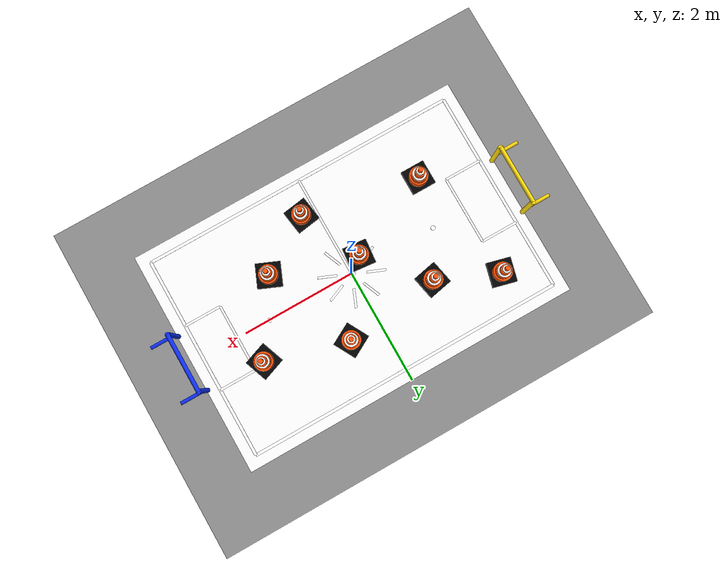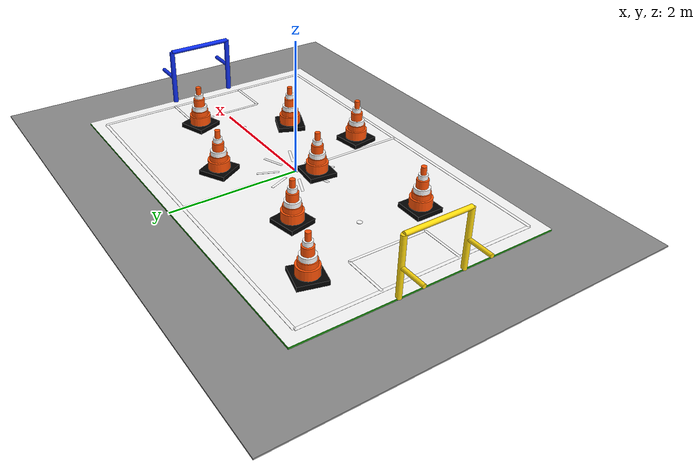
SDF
<?xml version="1.0"?>
<sdf version="1.6">
  <world name="assignment3_new_world">
    <plugin filename="gz-sim-physics-system" name="gz::sim::systems::Physics"/>
    <plugin filename="gz-sim-user-commands-system" name="gz::sim::systems::UserCommands"/>
    <plugin filename="gz-sim-scene-broadcaster-system" name="gz::sim::systems::SceneBroadcaster"/>
    <plugin filename="gz-sim-sensors-system" name="gz::sim::systems::Sensors">
      <render_engine>ogre</render_engine>
    </plugin>
    <plugin filename="gz-sim-imu-system" name="gz::sim::systems::Imu"/>

    <gui fullscreen="0">
      <plugin filename="MinimalScene" name="Top View">
        <gz-gui>
          <title>Top View</title>
          <property type="bool" key="showTitleBar">true</property>
          <property type="string" key="state">docked</property>
        </gz-gui>

        <engine>ogre2</engine>
        <scene>scene</scene>
        <ambient_light>0.55 0.55 0.55</ambient_light>
        <background_color>0.7 0.7 0.7</background_color>
        <camera_pose>0 0 7 0 1.5708 0</camera_pose>
      </plugin>

      <plugin filename="EntityContextMenuPlugin" name="Entity context menu">
        <gz-gui>
          <property key="state" type="string">floating</property>
          <property key="width" type="double">5</property>
          <property key="height" type="double">5</property>
          <property key="showTitleBar" type="bool">false</property>
        </gz-gui>
      </plugin>
      <plugin filename="GzSceneManager" name="Scene Manager">
        <gz-gui>
          <property key="resizable" type="bool">false</property>
          <property key="width" type="double">5</property>
          <property key="height" type="double">5</property>
          <property key="state" type="string">floating</property>
          <property key="showTitleBar" type="bool">false</property>
        </gz-gui>
      </plugin>
      <plugin filename="InteractiveViewControl" name="Interactive view control">
        <gz-gui>
          <property key="resizable" type="bool">false</property>
          <property key="width" type="double">5</property>
          <property key="height" type="double">5</property>
          <property key="state" type="string">floating</property>
          <property key="showTitleBar" type="bool">false</property>
        </gz-gui>
      </plugin>
      <plugin filename="CameraTracking" name="Camera Tracking">
        <gz-gui>
          <property key="resizable" type="bool">false</property>
          <property key="width" type="double">5</property>
          <property key="height" type="double">5</property>
          <property key="state" type="string">floating</property>
          <property key="showTitleBar" type="bool">false</property>
        </gz-gui>
      </plugin>

      <plugin filename="ImageDisplay" name="Robot Camera">
        <gz-gui>
          <title>Robot Camera</title>
          <property key="state" type="string">docked</property>
          <property key="showTitleBar" type="bool">true</property>
        </gz-gui>
        <topic>/camera/image_raw</topic>
      </plugin>

      <plugin filename="WorldControl" name="World control">
        <gz-gui>
          <title>World control</title>
          <property type="bool" key="showTitleBar">false</property>
          <property type="bool" key="resizable">false</property>
          <property type="double" key="height">72</property>
          <property type="double" key="z">1</property>
          <property type="string" key="state">floating</property>
          <anchors target="Top View">
            <line own="left" target="left"/>
            <line own="bottom" target="bottom"/>
          </anchors>
        </gz-gui>

        <play_pause>true</play_pause>
        <step>true</step>
        <start_paused>false</start_paused>
        <use_event>true</use_event>
      </plugin>

      <plugin filename="WorldStats" name="World stats">
        <gz-gui>
          <title>World stats</title>
          <property type="bool" key="showTitleBar">false</property>
          <property type="bool" key="resizable">false</property>
          <property type="double" key="height">110</property>
          <property type="double" key="width">290</property>
          <property type="double" key="z">1</property>
          <property type="string" key="state">floating</property>
          <anchors target="Top View">
            <line own="right" target="right"/>
            <line own="bottom" target="bottom"/>
          </anchors>
        </gz-gui>

        <sim_time>true</sim_time>
        <real_time>true</real_time>
        <real_time_factor>true</real_time_factor>
        <iterations>true</iterations>
      </plugin>
    </gui>

    <light name="sun" type="directional">
      <cast_shadows>false</cast_shadows>
      <pose>0 0 10 0 0 0</pose>
      <diffuse>0.8 0.8 0.8 1</diffuse>
      <specular>0.2 0.2 0.2 1</specular>
      <direction>-0.4 0.3 -1</direction>
    </light>

    <scene>
      <ambient>0.45 0.45 0.45 1</ambient>
      <background>0.7 0.7 0.7 1</background>
      <grid>false</grid>
      <shadows>false</shadows>
    </scene>

    <physics type="ode">
      <real_time_update_rate>1000.0</real_time_update_rate>
      <max_step_size>0.001</max_step_size>
      <real_time_factor>1</real_time_factor>
      <ode>
        <solver>
          <type>quick</type>
          <iters>150</iters>
          <sor>1.4</sor>
        </solver>
        <constraints>
          <cfm>0.00001</cfm>
          <erp>0.2</erp>
          <contact_max_correcting_vel>2000.0</contact_max_correcting_vel>
          <contact_surface_layer>0.01</contact_surface_layer>
        </constraints>
      </ode>
    </physics>

    <model name="gray_gazebo_floor">
      <static>true</static>
      <pose>0 0 -0.025 0 0 0</pose>
      <link name="floor_link">
        <collision name="floor_collision">
          <geometry>
            <box>
              <size>8.0 6.0 0.02</size>
            </box>
          </geometry>
        </collision>
        <visual name="floor_visual">
          <geometry>
            <box>
              <size>8.0 6.0 0.02</size>
            </box>
          </geometry>
          <material>
            <ambient>0.48 0.48 0.48 1</ambient>
            <diffuse>0.55 0.55 0.55 1</diffuse>
          </material>
        </visual>
      </link>
    </model>

    <include>
      <uri>model://robocup_2009_spl_field</uri>
      <pose>0 0 0 0 0 0</pose>
    </include>

    <include>
      <name>cone_1</name>
      <uri>model://construction_cone</uri>
      <pose>-1.75 -0.85 0.03 0 0 0</pose>
    </include>
    <include>
      <name>cone_2</name>
      <uri>model://construction_cone</uri>
      <pose>-1.10 0.75 0.03 0 0 0.2</pose>
    </include>
    <include>
      <name>cone_3</name>
      <uri>model://construction_cone</uri>
      <pose>-0.25 -0.20 0.03 0 0 -0.1</pose>
    </include>
    <include>
      <name>cone_4</name>
      <uri>model://construction_cone</uri>
      <pose>0.55 0.95 0.03 0 0 0.5</pose>
    </include>
    <include>
      <name>cone_5</name>
      <uri>model://construction_cone</uri>
      <pose>1.20 -0.65 0.03 0 0 -0.4</pose>
    </include>
    <include>
      <name>cone_6</name>
      <uri>model://construction_cone</uri>
      <pose>1.95 0.55 0.03 0 0 0.35</pose>
    </include>
    <include>
      <name>cone_7</name>
      <uri>model://construction_cone</uri>
      <pose>0.25 -1.25 0.03 0 0 0.15</pose>
    </include>
    <include>
      <name>cone_8</name>
      <uri>model://construction_cone</uri>
      <pose>-2.15 1.20 0.03 0 0 -0.25</pose>
    </include>
  </world>
</sdf>

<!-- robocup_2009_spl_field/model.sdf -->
<sdf version="1.8">
  <model name="robocup_2009_spl_field">
    <static>true</static>
    <link name="field">
      <collision name="field_collision">
        <geometry>
          <box>
            <size>6.0 4.0 0.02</size>
          </box>
        </geometry>
      </collision>
      <visual name="green_field">
        <pose>0 0 0.0 0 0 0</pose>
        <geometry>
          <box>
            <size>6.0 4.0 0.02</size>
          </box>
        </geometry>
        <material>
          <ambient>0.12 0.48 0.08 1</ambient>
          <diffuse>0.15 0.65 0.10 1</diffuse>
        </material>
      </visual>
      <visual name="hd_field_texture">
        <pose>0 0 0.031 0 0 0</pose>
        <geometry>
          <plane>
            <normal>0 0 1</normal>
            <size>6.0 4.0</size>
          </plane>
        </geometry>
        <material>
          <pbr>
            <metal>
              <albedo_map>materials/textures/robocup_field_hd.png</albedo_map>
              <roughness>1.0</roughness>
              <metalness>0.0</metalness>
            </metal>
          </pbr>
          <ambient>1 1 1 1</ambient>
          <diffuse>1 1 1 1</diffuse>
          <lighting>false</lighting>
        </material>
      </visual>

      <visual name="line_left">
        <pose>-2.8 0 0.018 0 0 0</pose>
        <geometry><box><size>0.05 3.6 0.01</size></box></geometry>
        <material><ambient>1 1 1 1</ambient><diffuse>1 1 1 1</diffuse></material>
      </visual>
      <visual name="line_right">
        <pose>2.8 0 0.018 0 0 0</pose>
        <geometry><box><size>0.05 3.6 0.01</size></box></geometry>
        <material><ambient>1 1 1 1</ambient><diffuse>1 1 1 1</diffuse></material>
      </visual>
      <visual name="line_top">
        <pose>0 1.8 0.018 0 0 0</pose>
        <geometry><box><size>5.6 0.05 0.01</size></box></geometry>
        <material><ambient>1 1 1 1</ambient><diffuse>1 1 1 1</diffuse></material>
      </visual>
      <visual name="line_bottom">
        <pose>0 -1.8 0.018 0 0 0</pose>
        <geometry><box><size>5.6 0.05 0.01</size></box></geometry>
        <material><ambient>1 1 1 1</ambient><diffuse>1 1 1 1</diffuse></material>
      </visual>
      <visual name="midline">
        <pose>0 0 0.019 0 0 0</pose>
        <geometry><box><size>0.04 3.6 0.01</size></box></geometry>
        <material><ambient>1 1 1 1</ambient><diffuse>1 1 1 1</diffuse></material>
      </visual>
      <visual name="center_circle_01">
        <pose>0.376 0.156 0.019 0 0 1.9635</pose>
        <geometry><box><size>0.04 0.325 0.01</size></box></geometry>
        <material><ambient>1 1 1 1</ambient><diffuse>1 1 1 1</diffuse></material>
      </visual>
      <visual name="center_circle_02">
        <pose>0.156 0.376 0.019 0 0 2.7489</pose>
        <geometry><box><size>0.04 0.325 0.01</size></box></geometry>
        <material><ambient>1 1 1 1</ambient><diffuse>1 1 1 1</diffuse></material>
      </visual>
      <visual name="center_circle_03">
        <pose>-0.156 0.376 0.019 0 0 -2.7489</pose>
        <geometry><box><size>0.04 0.325 0.01</size></box></geometry>
        <material><ambient>1 1 1 1</ambient><diffuse>1 1 1 1</diffuse></material>
      </visual>
      <visual name="center_circle_04">
        <pose>-0.376 0.156 0.019 0 0 -1.9635</pose>
        <geometry><box><size>0.04 0.325 0.01</size></box></geometry>
        <material><ambient>1 1 1 1</ambient><diffuse>1 1 1 1</diffuse></material>
      </visual>
      <visual name="center_circle_05">
        <pose>-0.376 -0.156 0.019 0 0 -1.1781</pose>
        <geometry><box><size>0.04 0.325 0.01</size></box></geometry>
        <material><ambient>1 1 1 1</ambient><diffuse>1 1 1 1</diffuse></material>
      </visual>
      <visual name="center_circle_06">
        <pose>-0.156 -0.376 0.019 0 0 -0.3927</pose>
        <geometry><box><size>0.04 0.325 0.01</size></box></geometry>
        <material><ambient>1 1 1 1</ambient><diffuse>1 1 1 1</diffuse></material>
      </visual>
      <visual name="center_circle_07">
        <pose>0.156 -0.376 0.019 0 0 0.3927</pose>
        <geometry><box><size>0.04 0.325 0.01</size></box></geometry>
        <material><ambient>1 1 1 1</ambient><diffuse>1 1 1 1</diffuse></material>
      </visual>
      <visual name="center_circle_08">
        <pose>0.376 -0.156 0.019 0 0 1.1781</pose>
        <geometry><box><size>0.04 0.325 0.01</size></box></geometry>
        <material><ambient>1 1 1 1</ambient><diffuse>1 1 1 1</diffuse></material>
      </visual>
      <visual name="center_spot">
        <pose>0 0 0.022 0 0 0</pose>
        <geometry><cylinder><radius>0.055</radius><length>0.01</length></cylinder></geometry>
        <material><ambient>1 1 1 1</ambient><diffuse>1 1 1 1</diffuse></material>
      </visual>

      <visual name="left_goal_box_front">
        <pose>-2.15 0 0.019 0 0 0</pose>
        <geometry><box><size>0.04 1.2 0.01</size></box></geometry>
        <material><ambient>1 1 1 1</ambient><diffuse>1 1 1 1</diffuse></material>
      </visual>
      <visual name="left_goal_box_top">
        <pose>-2.475 0.6 0.019 0 0 0</pose>
        <geometry><box><size>0.65 0.04 0.01</size></box></geometry>
        <material><ambient>1 1 1 1</ambient><diffuse>1 1 1 1</diffuse></material>
      </visual>
      <visual name="left_goal_box_bottom">
        <pose>-2.475 -0.6 0.019 0 0 0</pose>
        <geometry><box><size>0.65 0.04 0.01</size></box></geometry>
        <material><ambient>1 1 1 1</ambient><diffuse>1 1 1 1</diffuse></material>
      </visual>
      <visual name="left_penalty_mark">
        <pose>-1.55 0 0.022 0 0 0</pose>
        <geometry><cylinder><radius>0.04</radius><length>0.01</length></cylinder></geometry>
        <material><ambient>1 1 1 1</ambient><diffuse>1 1 1 1</diffuse></material>
      </visual>

      <visual name="right_goal_box_front">
        <pose>2.15 0 0.019 0 0 0</pose>
        <geometry><box><size>0.04 1.2 0.01</size></box></geometry>
        <material><ambient>1 1 1 1</ambient><diffuse>1 1 1 1</diffuse></material>
      </visual>
      <visual name="right_goal_box_top">
        <pose>2.475 0.6 0.019 0 0 0</pose>
        <geometry><box><size>0.65 0.04 0.01</size></box></geometry>
        <material><ambient>1 1 1 1</ambient><diffuse>1 1 1 1</diffuse></material>
      </visual>
      <visual name="right_goal_box_bottom">
        <pose>2.475 -0.6 0.019 0 0 0</pose>
        <geometry><box><size>0.65 0.04 0.01</size></box></geometry>
        <material><ambient>1 1 1 1</ambient><diffuse>1 1 1 1</diffuse></material>
      </visual>
      <visual name="right_penalty_mark">
        <pose>1.55 0 0.022 0 0 0</pose>
        <geometry><cylinder><radius>0.04</radius><length>0.01</length></cylinder></geometry>
        <material><ambient>1 1 1 1</ambient><diffuse>1 1 1 1</diffuse></material>
      </visual>

      <visual name="left_goal_post_top">
        <pose>-2.98 0.5 0.45 0 0 0</pose>
        <geometry><cylinder><radius>0.04</radius><length>0.9</length></cylinder></geometry>
        <material><ambient>1 0.85 0.05 1</ambient><diffuse>1 0.85 0.05 1</diffuse></material>
      </visual>
      <visual name="left_goal_post_bottom">
        <pose>-2.98 -0.5 0.45 0 0 0</pose>
        <geometry><cylinder><radius>0.04</radius><length>0.9</length></cylinder></geometry>
        <material><ambient>1 0.85 0.05 1</ambient><diffuse>1 0.85 0.05 1</diffuse></material>
      </visual>
      <visual name="left_goal_crossbar">
        <pose>-2.98 0 0.9 1.5708 0 0</pose>
        <geometry><cylinder><radius>0.035</radius><length>1.0</length></cylinder></geometry>
        <material><ambient>1 0.85 0.05 1</ambient><diffuse>1 0.85 0.05 1</diffuse></material>
      </visual>
      <visual name="left_goal_back_bar_top">
        <pose>-3.18 0.5 0.45 0 1.5708 0</pose>
        <geometry><cylinder><radius>0.03</radius><length>0.4</length></cylinder></geometry>
        <material><ambient>1 0.85 0.05 1</ambient><diffuse>1 0.85 0.05 1</diffuse></material>
      </visual>
      <visual name="left_goal_back_bar_bottom">
        <pose>-3.18 -0.5 0.45 0 1.5708 0</pose>
        <geometry><cylinder><radius>0.03</radius><length>0.4</length></cylinder></geometry>
        <material><ambient>1 0.85 0.05 1</ambient><diffuse>1 0.85 0.05 1</diffuse></material>
      </visual>

      <visual name="right_goal_post_top">
        <pose>2.98 0.5 0.45 0 0 0</pose>
        <geometry><cylinder><radius>0.04</radius><length>0.9</length></cylinder></geometry>
        <material><ambient>0.05 0.18 0.95 1</ambient><diffuse>0.05 0.18 0.95 1</diffuse></material>
      </visual>
      <visual name="right_goal_post_bottom">
        <pose>2.98 -0.5 0.45 0 0 0</pose>
        <geometry><cylinder><radius>0.04</radius><length>0.9</length></cylinder></geometry>
        <material><ambient>0.05 0.18 0.95 1</ambient><diffuse>0.05 0.18 0.95 1</diffuse></material>
      </visual>
      <visual name="right_goal_crossbar">
        <pose>2.98 0 0.9 1.5708 0 0</pose>
        <geometry><cylinder><radius>0.035</radius><length>1.0</length></cylinder></geometry>
        <material><ambient>0.05 0.18 0.95 1</ambient><diffuse>0.05 0.18 0.95 1</diffuse></material>
      </visual>
      <visual name="right_goal_back_bar_top">
        <pose>3.18 0.5 0.45 0 1.5708 0</pose>
        <geometry><cylinder><radius>0.03</radius><length>0.4</length></cylinder></geometry>
        <material><ambient>0.05 0.18 0.95 1</ambient><diffuse>0.05 0.18 0.95 1</diffuse></material>
      </visual>
      <visual name="right_goal_back_bar_bottom">
        <pose>3.18 -0.5 0.45 0 1.5708 0</pose>
        <geometry><cylinder><radius>0.03</radius><length>0.4</length></cylinder></geometry>
        <material><ambient>0.05 0.18 0.95 1</ambient><diffuse>0.05 0.18 0.95 1</diffuse></material>
      </visual>
    </link>
  </model>
</sdf>

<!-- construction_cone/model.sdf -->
<sdf version="1.6">
  <model name="construction_cone">
    <static>true</static>
    <link name="cone">
      <collision name="base_collision">
        <pose>0 0 0.04 0 0 0</pose>
        <geometry><cylinder><radius>0.18</radius><length>0.08</length></cylinder></geometry>
      </collision>
      <collision name="body_collision">
        <pose>0 0 0.32 0 0 0</pose>
        <geometry><cylinder><radius>0.12</radius><length>0.55</length></cylinder></geometry>
      </collision>

      <visual name="black_base">
        <pose>0 0 0.035 0 0 0</pose>
        <geometry><box><size>0.42 0.42 0.07</size></box></geometry>
        <material><ambient>0.01 0.01 0.01 1</ambient><diffuse>0.01 0.01 0.01 1</diffuse></material>
      </visual>
      <visual name="orange_lower">
        <pose>0 0 0.14 0 0 0</pose>
        <geometry><cylinder><radius>0.16</radius><length>0.14</length></cylinder></geometry>
        <material><ambient>1.0 0.32 0.02 1</ambient><diffuse>1.0 0.32 0.02 1</diffuse></material>
      </visual>
      <visual name="orange_lower_taper">
        <pose>0 0 0.24 0 0 0</pose>
        <geometry><cylinder><radius>0.13</radius><length>0.10</length></cylinder></geometry>
        <material><ambient>1.0 0.32 0.02 1</ambient><diffuse>1.0 0.32 0.02 1</diffuse></material>
      </visual>
      <visual name="white_band_lower">
        <pose>0 0 0.32 0 0 0</pose>
        <geometry><cylinder><radius>0.115</radius><length>0.08</length></cylinder></geometry>
        <material><ambient>1 1 1 1</ambient><diffuse>1 1 1 1</diffuse></material>
      </visual>
      <visual name="orange_mid">
        <pose>0 0 0.42 0 0 0</pose>
        <geometry><cylinder><radius>0.085</radius><length>0.12</length></cylinder></geometry>
        <material><ambient>1.0 0.32 0.02 1</ambient><diffuse>1.0 0.32 0.02 1</diffuse></material>
      </visual>
      <visual name="white_band_upper">
        <pose>0 0 0.52 0 0 0</pose>
        <geometry><cylinder><radius>0.065</radius><length>0.065</length></cylinder></geometry>
        <material><ambient>1 1 1 1</ambient><diffuse>1 1 1 1</diffuse></material>
      </visual>
      <visual name="orange_top">
        <pose>0 0 0.61 0 0 0</pose>
        <geometry><cylinder><radius>0.04</radius><length>0.12</length></cylinder></geometry>
        <material><ambient>1.0 0.32 0.02 1</ambient><diffuse>1.0 0.32 0.02 1</diffuse></material>
      </visual>
    </link>
  </model>
</sdf>
